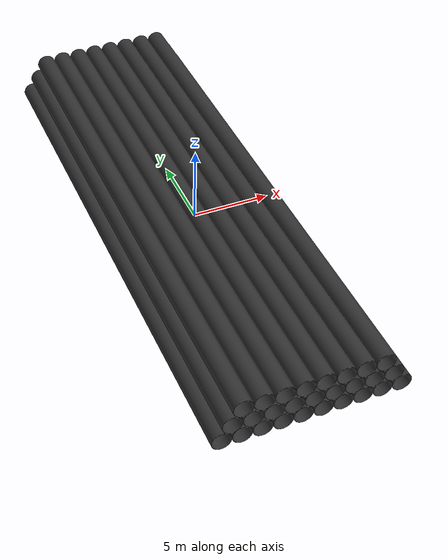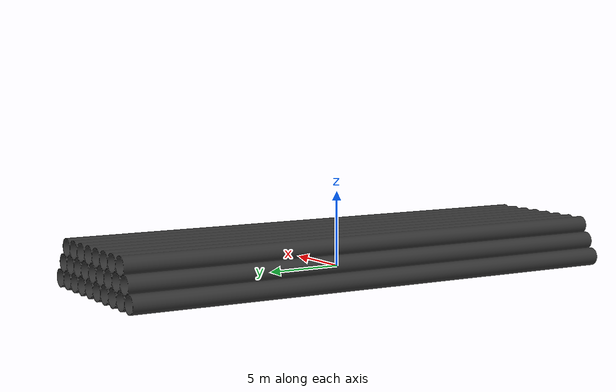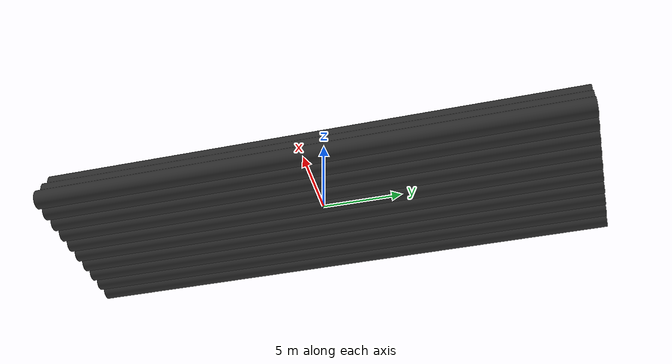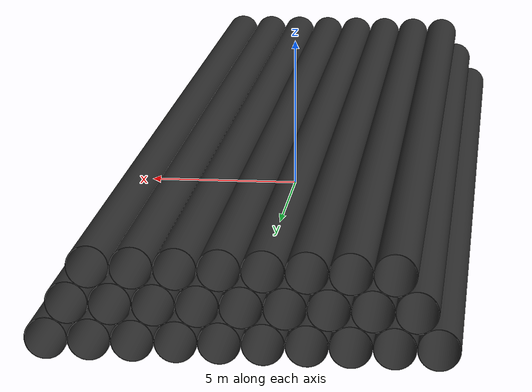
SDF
<?xml version='1.0'?>
<sdf version='1.5'>
  <model name='48inch_pipe_stack'>
    <static>true</static>
    <link name="pipe_stack">
      <visual name="visual">
            <geometry>
                <mesh>
                    <uri>model://large_pipe_stack/meshes/48inch_pipe_stack.dae</uri>
                </mesh>
            </geometry>
        </visual>
        <collision name="collision">
            <geometry>
                <mesh>
                    <uri>model://large_pipe_stack/meshes/48inch_pipe_stack.dae</uri>
                </mesh>
            </geometry>
        </collision>
    </link>
  </model>
</sdf>
